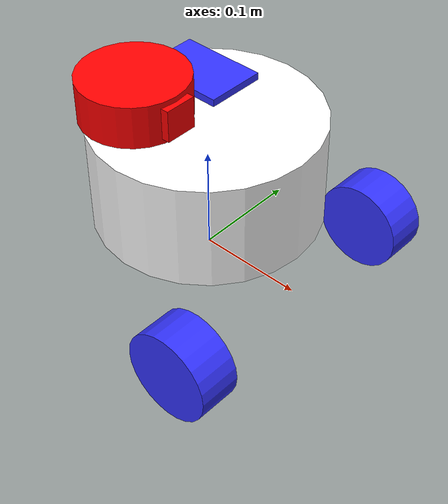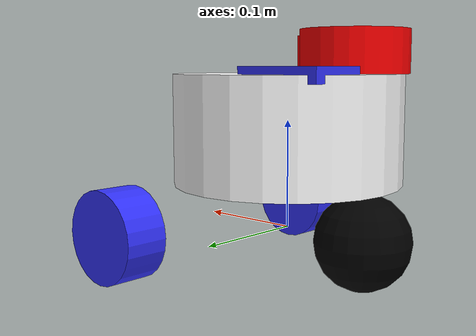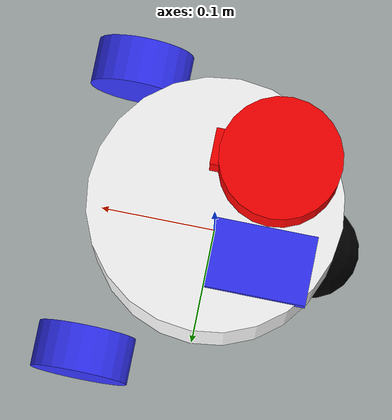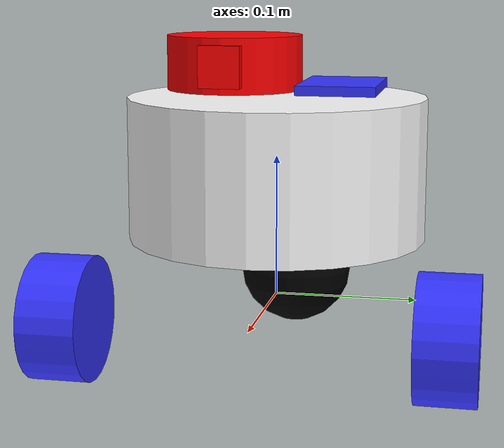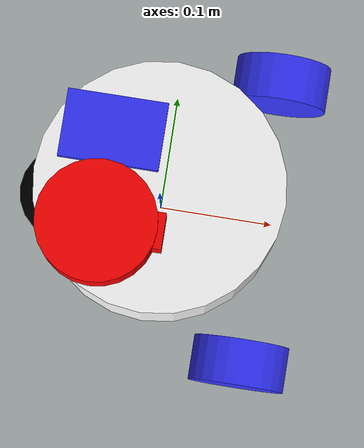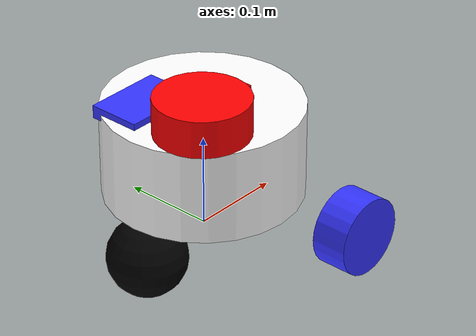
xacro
<?xml version="1.0"?>
<robot xmlns:xacro="http://www.ros.org/wiki/xacro"  name="robot">

   <xacro:include filename="robot_core.xacro" />
   <xacro:include filename="ros2_control.xacro"/>
   <xacro:include filename="lidar.xacro"/>
   <xacro:include filename="camera.xacro"/>

</robot>

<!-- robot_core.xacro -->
<robot xmlns:xacro="http://www.ros.org/wiki/xacro" >

    <xacro:include filename="inertial_macros.xacro"/>

    <material name="white">
        <color rgba="1 1 1 1"/>
    </material>

    <material name="orange">
        <color rgba="1 0.3 0.1 1"/>
    </material>

    <material name="blue">
        <color rgba="0.2 0.2 1 1"/>
    </material>

    <material name="black">
        <color rgba="0 0 0 1"/>
    </material>

    <material name="red">
        <color rgba="1 0 0 1"/>
    </material>

    <link name="base_link">

    </link>

    <joint name="chassis_joint" type="fixed">
        <parent link="base_link"/>
        <child link="chassis"/>
        <origin xyz="-0.105 0 0.0425"/>
    </joint>

    <link name="chassis">
        <visual>
            <origin xyz="0.105 0 0.05" rpy="0 0 0"/>
            <geometry>
                <cylinder radius="0.105" length="0.10" />
            </geometry>
            <material name="white"/>
        </visual>
         <collision>
            <origin xyz="0.105 0 0.05" rpy="0 0 0"/>
            <geometry>
                <cylinder radius="0.105" length="0.10" />
            </geometry>
        </collision>
        <xacro:inertial_cylinder mass="0.8" length="0.1" radius="0.11">
            <origin xyz="0 0 0" rpy="0 0 0"/>
        </xacro:inertial_cylinder>
    </link>
    <gazebo reference="chassis">
        <material>Gazebo/White </material>
    </gazebo>

    <!-- LEFT WHEEL -->
    <joint name="left_wheel_joint" type="continuous">
        <parent link="base_link"/>
        <child link="left_wheel"/>
        <origin xyz="0.09 0.127 0" rpy="-${pi/2} 0 0"/>
        <axis xyz="0 0 1"/>
    </joint>

    <link name="left_wheel">
            <visual>
                <geometry>
                    <cylinder length="0.04" radius="0.0425" />
                </geometry>
                <material name="blue"/>
            </visual>
            <collision>
                <geometry>
                    <cylinder length="0.001" radius="0.0425" />
                </geometry>
            </collision>
            <xacro:inertial_cylinder mass="0.1" length="0.04" radius="0.0425">
            <origin xyz="0 0 0" rpy="0 0 0"/>
            </xacro:inertial_cylinder>
    </link>
    <gazebo reference="left_wheel">
        <material>Gazebo/Blue </material>
    </gazebo>

     <!-- RIGHT WHEEL -->
    <joint name="right_wheel_joint" type="continuous">
        <parent link="base_link"/>
        <child link="right_wheel"/>
        <origin xyz="0.09 -0.127 0" rpy="-${pi/2} 0 0"/>
        <axis xyz="0 0 1"/>
    </joint>
    <link name="right_wheel">
        <visual>
            <geometry>
                <cylinder length="0.04" radius="0.0425" />
            </geometry>
            <material name="blue"/>
        </visual>
        <collision>
            <geometry>
                    <cylinder length="0.001" radius="0.0425" />
            </geometry>
        </collision>
        <xacro:inertial_cylinder mass="0.1" length="0.04" radius="0.0425">
            <origin xyz="0 0 0" rpy="0 0 0"/>
        </xacro:inertial_cylinder>
    </link>
    <gazebo reference="right_wheel">
        <material>Gazebo/Blue </material>
    </gazebo>

     <!-- back CASTER WHEEL move-->
    <joint name="backCaster_wheel_joint" type="fixed">
        <parent link="chassis"/>
        <child link="backCaster_wheel"/>
        <origin xyz="0.02 0 -0.0425" rpy="0 0 0"/>
    </joint>

    <link name="backCaster_wheel">
<visual>
    <geometry>
        <sphere radius="0.0425" />
    </geometry>
    <material name="black"/>
</visual>
<collision>
    <geometry>
        <sphere radius="0.0425" />
    </geometry>
</collision>
<xacro:inertial_sphere mass="0.1" radius="0.0425">
    <origin xyz="0 0 0" rpy="0 0 0"/>
</xacro:inertial_sphere>
    </link>
    <gazebo reference="backCaster_wheel">
        <material>Gazebo/Black </material>
        <mu1 value="0.001"/>
        <mu2 value="0.001"/>
    </gazebo>

      <!-- PI -->
    <joint name="raspi_joint" type="fixed">
         <parent link="chassis"/>
         <child link="raspi_box"/>
         <origin xyz="0.06 0.04 0.1" rpy="0 0 0"/>
    </joint>
    <link name="raspi_box">
        <visual>
            <geometry>
                <box size="0.084 0.057 0.014"/>
            </geometry>
            <material name="blue"/>
        </visual>
        <collision>
           <origin xyz="0.06 -0.04 0.12" rpy="0 0 0"/>
           <geometry>
                <box size="0.084 0.057 0.014"/>
            </geometry>
        </collision>
        <xacro:inertial_box mass="0.1" x="0.084" y="0.057" z="0.014">
            <origin xyz="0 0 0" rpy="0 0 0"/>
        </xacro:inertial_box>
    </link>
    <gazebo reference="raspi_box">
        <material>Gazebo/Black </material>
    </gazebo>
</robot>

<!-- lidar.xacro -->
<robot xmlns:xacro="http://www.ros.org/wiki/xacro">

  <!-- Joint: attach laser to chassis -->
  <joint name="laser_joint" type="fixed">
    <parent link="chassis"/>
    <child link="laser_frame"/>
    <origin xyz="0.06 -0.04 0.12" rpy="0 0 0"/>
  </joint>

  <!-- Laser link -->
  <link name="laser_frame">
    <visual>
      <geometry>
        <cylinder radius="0.05" length="0.04"/>
      </geometry>
      <material name="red"/>
    </visual>
    <collision>
      <geometry>
        <cylinder radius="0.05" length="0.04"/>
      </geometry>
    </collision>
    <xacro:inertial_cylinder mass="0.1" length="0.04" radius="0.05">
      <origin xyz="0 0 0" rpy="0 0 0"/>
    </xacro:inertial_cylinder>
  </link>

  <!-- Ignition Gazebo LIDAR sensor -->
  <gazebo reference="laser_frame">
    <sensor name="lidar" type="gpu_lidar">
      <pose>0 0 0 0 0 0</pose>
      <update_rate>10</update_rate>
      <visualize>true</visualize>

      <ray>
        <scan>
          <horizontal>
            <samples>360</samples>
            <resolution>1</resolution>
            <min_angle>-3.14</min_angle>
            <max_angle>3.14</max_angle>
          </horizontal>
        </scan>
        <range>
          <min>0.3</min>
          <max>12.0</max>
          <resolution>0.01</resolution>
        </range>
      </ray>
    </sensor>
  </gazebo>

</robot>

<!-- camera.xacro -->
<robot xmlns:xacro="http://www.ros.org/wiki/xacro">

  <!-- Joint: attach camera to chassis -->
  <joint name="camera_joint" type="fixed">
    <parent link="chassis"/>
    <child link="camera_link"/>
    <origin xyz="0.11 -0.04 0.12" rpy="0 0 0"/>
  </joint>

  <!-- Camera body link -->
  <link name="camera_link">
    <visual>
      <geometry>
        <box size="0.010 0.03 0.03"/>
      </geometry>
      <material name="red"/>
    </visual>
  </link>

  <!-- Optical frame for camera -->
  <joint name="camera_optical_joint" type="fixed">
    <origin xyz="0 0 0" rpy="${-pi/2} 0 ${-pi/2}" />
    <parent link="camera_link" />
    <child link="camera_link_optical" />
  </joint>

  <link name="camera_link_optical" />

  <!-- Gazebo/Ignition camera sensor -->
  <gazebo reference="camera_link">
    <material>Gazebo/Red</material>

    <sensor name="camera" type="camera">
      <pose>0 0 0 0 0 0</pose>
      <visualize>true</visualize>
      <update_rate>30</update_rate>

      <camera>
        <horizontal_fov>1.089</horizontal_fov>
        <image>
          <format>R8G8B8</format>
          <width>640</width>
          <height>480</height>
        </image>
        <clip>
          <near>0.05</near>
          <far>8.0</far>
        </clip>
      </camera>

      <!-- In Ignition, no ROS plugin — topics will be published on /camera -->
      <always_on>true</always_on>
    </sensor>
  </gazebo>

</robot>
